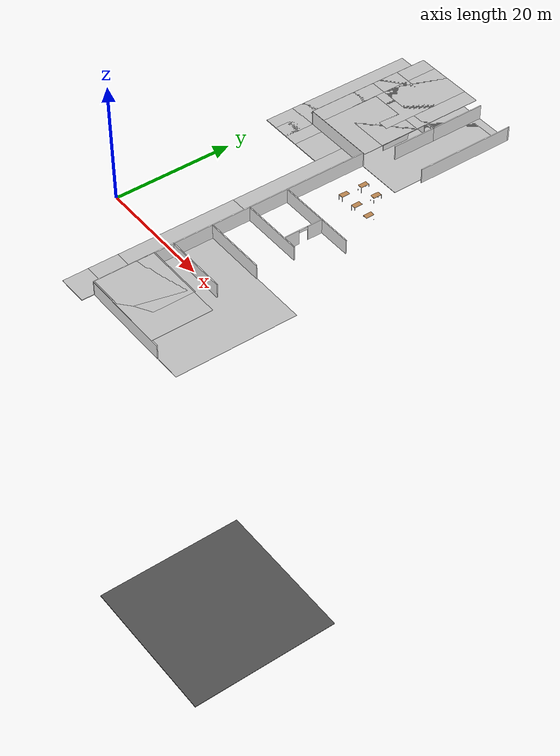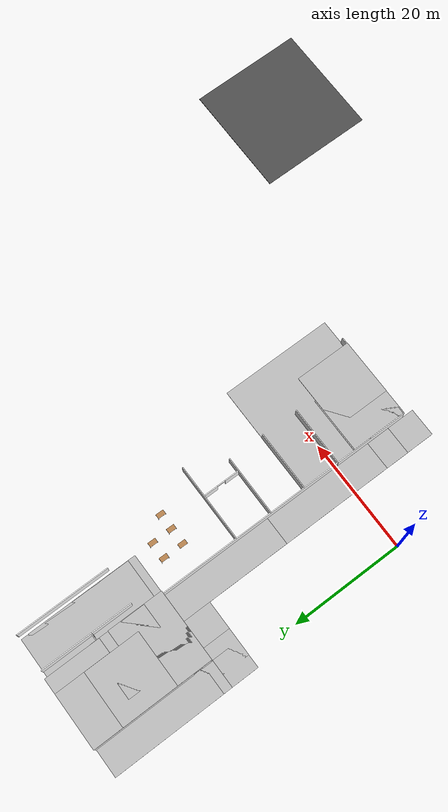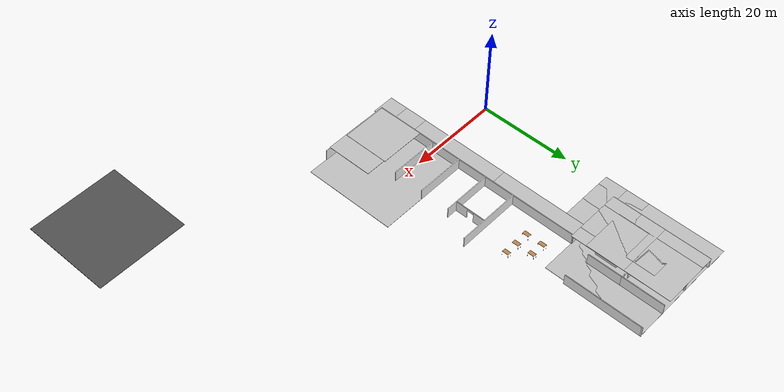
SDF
<sdf version="1.6">
 <world name="default">
  <model name="mainoffice">
   <pose>42.7555 15.4488 0 0 -0 0</pose>
   <link name="Wall_125">
    <collision name="Wall_125_Collision">
     <geometry><box><size>4.25 0.15 2.5</size></box></geometry>
     <pose>0 0 1.25 0 -0 0</pose>
    </collision>
    <visual name="Wall_125_Visual">
     <pose>0 0 1.25 0 -0 0</pose>
     <geometry><box><size>4.25 0.15 2.5</size></box></geometry>
     <material>
      <script>
       <uri>model://office_env/materials/scripts</uri>
       <uri>model://office_env/materials/textures</uri>
       <name>wall</name>
      </script>
      <ambient>1 1 1 1</ambient>
     </material>
    </visual>
    <pose>-30.1665 27.2379 0 0 -0 3.14159</pose>
   </link>
   <link name="Wall_126">
    <pose>-32.2165 33.1629 0 0 -0 1.5708</pose>
    <visual name="Wall_126_Visual_0">
     <pose>-5.66049 0 1.25 0 -0 0</pose>
     <geometry><box><size>0.679016 0.15 2.5</size></box></geometry>
     <material>
      <script>
       <uri>model://office_env/materials/scripts</uri>
       <uri>model://office_env/materials/textures</uri>
       <name>wall</name>
      </script>
      <ambient>1 1 1 1</ambient>
     </material>
    </visual>
    <collision name="Wall_126_Collision_0">
     <geometry><box><size>0.679016 0.15 2.5</size></box></geometry>
     <pose>-5.66049 0 1.25 0 -0 0</pose>
    </collision>
    <visual name="Wall_126_Visual_1">
     <pose>1.08951 0 1.25 0 -0 0</pose>
     <geometry><box><size>9.82098 0.15 2.5</size></box></geometry>
     <material>
      <script>
       <uri>model://office_env/materials/scripts</uri>
       <uri>model://office_env/materials/textures</uri>
       <name>wall</name>
      </script>
      <ambient>1 1 1 1</ambient>
     </material>
    </visual>
    <collision name="Wall_126_Collision_1">
     <geometry><box><size>9.82098 0.15 2.5</size></box></geometry>
     <pose>1.08951 0 1.25 0 -0 0</pose>
    </collision>
    <visual name="Wall_126_Visual_2">
     <pose>-4.57098 0 2.25 0 -0 0</pose>
     <geometry><box><size>1.5 0.15 0.5</size></box></geometry>
     <material>
      <script>
       <uri>model://office_env/materials/scripts</uri>
       <uri>model://office_env/materials/textures</uri>
       <name>wall</name>
      </script>
      <ambient>1 1 1 1</ambient>
     </material>
    </visual>
    <collision name="Wall_126_Collision_2">
     <geometry><box><size>1.5 0.15 0.5</size></box></geometry>
     <pose>-4.57098 0 2.25 0 -0 0</pose>
    </collision>
   </link>
   <link name="Wall_128">
    <collision name="Wall_128_Collision">
     <geometry><box><size>0.25 0.15 2.5</size></box></geometry>
     <pose>0 0 1.25 0 -0 0</pose>
    </collision>
    <visual name="Wall_128_Visual">
     <pose>0 0 1.25 0 -0 0</pose>
     <geometry><box><size>0.25 0.15 2.5</size></box></geometry>
     <material>
      <script>
       <uri>model://office_env/materials/scripts</uri>
       <uri>model://office_env/materials/textures</uri>
       <name>wall</name>
      </script>
      <ambient>1 1 1 1</ambient>
     </material>
    </visual>
    <pose>-32.2165 39.1379 0 0 -0 1.5708</pose>
   </link>
   <link name="Wall_130">
    <pose>-28.8573 30.0928 0 0 -0 0</pose>
    <visual name="Wall_130_Visual_0">
     <pose>-1.12067 0 1.25 0 -0 0</pose>
     <geometry><box><size>4.75866 0.15 2.5</size></box></geometry>
     <material>
      <script>
       <uri>model://office_env/materials/scripts</uri>
       <uri>model://office_env/materials/textures</uri>
       <name>wall</name>
      </script>
      <ambient>1 1 1 1</ambient>
     </material>
    </visual>
    <collision name="Wall_130_Collision_0">
     <geometry><box><size>4.75866 0.15 2.5</size></box></geometry>
     <pose>-1.12067 0 1.25 0 -0 0</pose>
    </collision>
    <visual name="Wall_130_Visual_1">
     <pose>3.12933 0 1.25 0 -0 0</pose>
     <geometry><box><size>0.741337 0.15 2.5</size></box></geometry>
     <material>
      <script>
       <uri>model://office_env/materials/scripts</uri>
       <uri>model://office_env/materials/textures</uri>
       <name>wall</name>
      </script>
      <ambient>1 1 1 1</ambient>
     </material>
    </visual>
    <collision name="Wall_130_Collision_1">
     <geometry><box><size>0.741337 0.15 2.5</size></box></geometry>
     <pose>3.12933 0 1.25 0 -0 0</pose>
    </collision>
    <visual name="Wall_130_Visual_2">
     <pose>2.00866 0 2.25 0 -0 0</pose>
     <geometry><box><size>1.5 0.15 0.5</size></box></geometry>
     <material>
      <script>
       <uri>model://office_env/materials/scripts</uri>
       <uri>model://office_env/materials/textures</uri>
       <name>wall</name>
      </script>
      <ambient>1 1 1 1</ambient>
     </material>
    </visual>
    <collision name="Wall_130_Collision_2">
     <geometry><box><size>1.5 0.15 0.5</size></box></geometry>
     <pose>2.00866 0 2.25 0 -0 0</pose>
    </collision>
   </link>
   <link name="Wall_131">
    <collision name="Wall_131_Collision">
     <geometry><box><size>7.5 0.15 2.5</size></box></geometry>
     <pose>0 0 1.25 0 -0 0</pose>
    </collision>
    <visual name="Wall_131_Visual">
     <pose>0 0 1.25 0 -0 0</pose>
     <geometry><box><size>7.5 0.15 2.5</size></box></geometry>
     <material>
      <script>
       <uri>model://office_env/materials/scripts</uri>
       <uri>model://office_env/materials/textures</uri>
       <name>wall</name>
      </script>
      <ambient>1 1 1 1</ambient>
     </material>
    </visual>
    <pose>-25.4323 26.4178 0 0 0 -1.5708</pose>
   </link>
   <link name="Wall_133">
    <collision name="Wall_133_Collision">
     <geometry><box><size>4.75 0.15 2.5</size></box></geometry>
     <pose>0 0 1.25 0 -0 0</pose>
    </collision>
    <visual name="Wall_133_Visual">
     <pose>0 0 1.25 0 -0 0</pose>
     <geometry><box><size>4.75 0.15 2.5</size></box></geometry>
     <material>
      <script>
       <uri>model://office_env/materials/scripts</uri>
       <uri>model://office_env/materials/textures</uri>
       <name>wall</name>
      </script>
      <ambient>1 1 1 1</ambient>
     </material>
    </visual>
    <pose>-28.1164 24.9379 0 0 0 -1.5708</pose>
   </link>
   <link name="Wall_135">
    <collision name="Wall_135_Collision">
     <geometry><box><size>9.25 0.15 2.5</size></box></geometry>
     <pose>0 0 1.25 0 -0 0</pose>
    </collision>
    <visual name="Wall_135_Visual">
     <pose>0 0 1.25 0 -0 0</pose>
     <geometry><box><size>9.25 0.15 2.5</size></box></geometry>
     <material>
      <script>
       <uri>model://office_env/materials/scripts</uri>
       <uri>model://office_env/materials/textures</uri>
       <name>wall</name>
      </script>
      <ambient>1 1 1 1</ambient>
     </material>
    </visual>
    <pose>-25.4323 34.6428 0 0 -0 1.5708</pose>
   </link>
   <link name="Wall_137">
    <collision name="Wall_137_Collision">
     <geometry><box><size>16.75 0.15 2.5</size></box></geometry>
     <pose>0 0 1.25 0 -0 0</pose>
    </collision>
    <visual name="Wall_137_Visual">
     <pose>0 0 1.25 0 -0 0</pose>
     <geometry><box><size>16.75 0.15 2.5</size></box></geometry>
     <material>
      <script>
       <uri>model://office_env/materials/scripts</uri>
       <uri>model://office_env/materials/textures</uri>
       <name>wall</name>
      </script>
      <ambient>1 1 1 1</ambient>
     </material>
    </visual>
    <pose>-18.9193 30.8236 0 0 -0 1.5708</pose>
   </link>
   <link name="Wall_138">
    <collision name="Wall_138_Collision">
     <geometry><box><size>0.25 0.15 2.5</size></box></geometry>
     <pose>0 0 1.25 0 -0 0</pose>
    </collision>
    <visual name="Wall_138_Visual">
     <pose>0 0 1.25 0 -0 0</pose>
     <geometry><box><size>0.25 0.15 2.5</size></box></geometry>
     <material>
      <script>
       <uri>model://office_env/materials/scripts</uri>
       <uri>model://office_env/materials/textures</uri>
       <name>wall</name>
      </script>
      <ambient>1 1 1 1</ambient>
     </material>
    </visual>
    <pose>-18.9193 39.1736 0 0 -0 1.5708</pose>
   </link>
   <link name="Wall_34">
    <collision name="Wall_34_Collision">
     <geometry><box><size>15.75 0.15 2.5</size></box></geometry>
     <pose>0 0 1.25 0 -0 0</pose>
    </collision>
    <visual name="Wall_34_Visual">
     <pose>0 0 1.25 0 -0 0</pose>
     <geometry><box><size>15.75 0.15 2.5</size></box></geometry>
     <material>
      <script>
       <uri>model://office_env/materials/scripts</uri>
       <uri>model://office_env/materials/textures</uri>
       <name>wall</name>
      </script>
      <ambient>1 1 1 1</ambient>
     </material>
    </visual>
    <pose>-19.2991 -29.125 0 0 -0 3.14159</pose>
   </link>
   <link name="Wall_35">
    <collision name="Wall_35_Collision">
     <geometry><box><size>47.25 0.15 2.5</size></box></geometry>
     <pose>0 0 1.25 0 -0 0</pose>
    </collision>
    <visual name="Wall_35_Visual">
     <pose>0 0 1.25 0 -0 0</pose>
     <geometry><box><size>47.25 0.15 2.5</size></box></geometry>
     <material>
      <script>
       <uri>model://office_env/materials/scripts</uri>
       <uri>model://office_env/materials/textures</uri>
       <name>wall</name>
      </script>
      <ambient>1 1 1 1</ambient>
     </material>
    </visual>
    <pose>-27.0991 -5.575 0 0 -0 1.5708</pose>
   </link>
   <link name="Wall_36">
    <collision name="Wall_36_Collision">
     <geometry><box><size>12.5 0.15 2.5</size></box></geometry>
     <pose>0 0 1.25 0 -0 0</pose>
    </collision>
    <visual name="Wall_36_Visual">
     <pose>0 0 1.25 0 -0 0</pose>
     <geometry><box><size>12.5 0.15 2.5</size></box></geometry>
     <material>
      <script>
       <uri>model://office_env/materials/scripts</uri>
       <uri>model://office_env/materials/textures</uri>
       <name>wall</name>
      </script>
      <ambient>1 1 1 1</ambient>
     </material>
    </visual>
    <pose>-33.2741 17.975 0 0 -0 3.14159</pose>
   </link>
   <link name="Wall_37">
    <pose>-39.4491 28.65 0 0 -0 1.5708</pose>
    <visual name="Wall_37_Visual_0">
     <pose>-9.83172 0 1.25 0 -0 0</pose>
     <geometry><box><size>1.83655 0.15 2.5</size></box></geometry>
     <material>
      <script>
       <uri>model://office_env/materials/scripts</uri>
       <uri>model://office_env/materials/textures</uri>
       <name>wall</name>
      </script>
      <ambient>1 1 1 1</ambient>
     </material>
    </visual>
    <collision name="Wall_37_Collision_0">
     <geometry><box><size>1.83655 0.15 2.5</size></box></geometry>
     <pose>-9.83172 0 1.25 0 -0 0</pose>
    </collision>
    <visual name="Wall_37_Visual_1">
     <pose>1.66828 0 1.25 0 -0 0</pose>
     <geometry><box><size>18.1634 0.15 2.5</size></box></geometry>
     <material>
      <script>
       <uri>model://office_env/materials/scripts</uri>
       <uri>model://office_env/materials/textures</uri>
       <name>wall</name>
      </script>
      <ambient>1 1 1 1</ambient>
     </material>
    </visual>
    <collision name="Wall_37_Collision_1">
     <geometry><box><size>18.1634 0.15 2.5</size></box></geometry>
     <pose>1.66828 0 1.25 0 -0 0</pose>
    </collision>
    <visual name="Wall_37_Visual_2">
     <pose>-8.16345 0 2.25 0 -0 0</pose>
     <geometry><box><size>1.5 0.15 0.5</size></box></geometry>
     <material>
      <script>
       <uri>model://office_env/materials/scripts</uri>
       <uri>model://office_env/materials/textures</uri>
       <name>wall</name>
      </script>
      <ambient>1 1 1 1</ambient>
     </material>
    </visual>
    <collision name="Wall_37_Collision_2">
     <geometry><box><size>1.5 0.15 0.5</size></box></geometry>
     <pose>-8.16345 0 2.25 0 -0 0</pose>
    </collision>
   </link>
   <link name="Wall_63">
    <collision name="Wall_63_Collision">
     <geometry><box><size>10.75 0.15 2.5</size></box></geometry>
     <pose>0 0 1.25 0 -0 0</pose>
    </collision>
    <visual name="Wall_63_Visual">
     <pose>0 0 1.25 0 -0 0</pose>
     <geometry><box><size>10.75 0.15 2.5</size></box></geometry>
     <material>
      <script>
       <uri>model://office_env/materials/scripts</uri>
       <uri>model://office_env/materials/textures</uri>
       <name>wall</name>
      </script>
      <ambient>1 1 1 1</ambient>
     </material>
    </visual>
    <pose>-21.7491 -2.675 0 0 -0 3.14159</pose>
   </link>
   <link name="Wall_65">
    <collision name="Wall_65_Collision">
     <geometry><box><size>10.75 0.15 2.5</size></box></geometry>
     <pose>0 0 1.25 0 -0 0</pose>
    </collision>
    <visual name="Wall_65_Visual">
     <pose>0 0 1.25 0 -0 0</pose>
     <geometry><box><size>10.75 0.15 2.5</size></box></geometry>
     <material>
      <script>
       <uri>model://office_env/materials/scripts</uri>
       <uri>model://office_env/materials/textures</uri>
       <name>wall</name>
      </script>
      <ambient>1 1 1 1</ambient>
     </material>
    </visual>
    <pose>-21.7491 -22.275 0 0 -0 3.14159</pose>
   </link>
   <link name="Wall_69">
    <collision name="Wall_69_Collision">
     <geometry><box><size>10.75 0.15 2.5</size></box></geometry>
     <pose>0 0 1.25 0 -0 0</pose>
    </collision>
    <visual name="Wall_69_Visual">
     <pose>0 0 1.25 0 -0 0</pose>
     <geometry><box><size>10.75 0.15 2.5</size></box></geometry>
     <material>
      <script>
       <uri>model://office_env/materials/scripts</uri>
       <uri>model://office_env/materials/textures</uri>
       <name>wall</name>
      </script>
      <ambient>1 1 1 1</ambient>
     </material>
    </visual>
    <pose>-21.8396 -15.8176 0 0 -0 3.14159</pose>
   </link>
   <link name="Wall_71">
    <collision name="Wall_71_Collision">
     <geometry><box><size>10.75 0.15 2.5</size></box></geometry>
     <pose>0 0 1.25 0 -0 0</pose>
    </collision>
    <visual name="Wall_71_Visual">
     <pose>0 0 1.25 0 -0 0</pose>
     <geometry><box><size>10.75 0.15 2.5</size></box></geometry>
     <material>
      <script>
       <uri>model://office_env/materials/scripts</uri>
       <uri>model://office_env/materials/textures</uri>
       <name>wall</name>
      </script>
      <ambient>1 1 1 1</ambient>
     </material>
    </visual>
    <pose>-21.7518 -9.17769 0 0 -0 3.14159</pose>
   </link>
   <link name="Wall_88">
    <collision name="Wall_88_Collision">
     <geometry><box><size>14 0.15 2.5</size></box></geometry>
     <pose>0 0 1.25 0 -0 0</pose>
    </collision>
    <visual name="Wall_88_Visual">
     <pose>0 0 1.25 0 -0 0</pose>
     <geometry><box><size>14 0.15 2.5</size></box></geometry>
     <material>
      <script>
       <uri>model://office_env/materials/scripts</uri>
       <uri>model://office_env/materials/textures</uri>
       <name>wall</name>
      </script>
      <ambient>1 1 1 1</ambient>
     </material>
    </visual>
    <pose>-20.1147 4.02546 0 0 -0 3.14159</pose>
   </link>
   <link name="Wall_90">
    <pose>-18.7887 0.663928 0 0 0 -1.5708</pose>
    <visual name="Wall_90_Visual_0">
     <pose>-2.08201 0 1.25 0 -0 0</pose>
     <geometry><box><size>2.58598 0.15 2.5</size></box></geometry>
     <material>
      <script>
       <uri>model://office_env/materials/scripts</uri>
       <uri>model://office_env/materials/textures</uri>
       <name>wall</name>
      </script>
      <ambient>1 1 1 1</ambient>
     </material>
    </visual>
    <collision name="Wall_90_Collision_0">
     <geometry><box><size>2.58598 0.15 2.5</size></box></geometry>
     <pose>-2.08201 0 1.25 0 -0 0</pose>
    </collision>
    <visual name="Wall_90_Visual_1">
     <pose>2.04299 0 1.25 0 -0 0</pose>
     <geometry><box><size>2.66402 0.15 2.5</size></box></geometry>
     <material>
      <script>
       <uri>model://office_env/materials/scripts</uri>
       <uri>model://office_env/materials/textures</uri>
       <name>wall</name>
      </script>
      <ambient>1 1 1 1</ambient>
     </material>
    </visual>
    <collision name="Wall_90_Collision_1">
     <geometry><box><size>2.66402 0.15 2.5</size></box></geometry>
     <pose>2.04299 0 1.25 0 -0 0</pose>
    </collision>
    <visual name="Wall_90_Visual_2">
     <pose>-0.039023 0 2.25 0 -0 0</pose>
     <geometry><box><size>1.5 0.15 0.5</size></box></geometry>
     <material>
      <script>
       <uri>model://office_env/materials/scripts</uri>
       <uri>model://office_env/materials/textures</uri>
       <name>wall</name>
      </script>
      <ambient>1 1 1 1</ambient>
     </material>
    </visual>
    <collision name="Wall_90_Collision_2">
     <geometry><box><size>1.5 0.15 0.5</size></box></geometry>
     <pose>-0.039023 0 2.25 0 -0 0</pose>
    </collision>
   </link>
   <static>1</static>
  </model>
  <model name="asphalt_plane">
   <static>1</static>
   <link name="link">
    <collision name="collision"><geometry><box><size>20 20 0.1</size></box></geometry></collision>
    <visual name="visual">
     <cast_shadows>0</cast_shadows>
     <geometry><box><size>20 20 0.1</size></box></geometry>
     <material>
      <script>
       <uri>model://asphalt_plane/materials/scripts</uri>
       <uri>model://asphalt_plane/materials/textures</uri>
       <name>vrc/asphalt</name>
      </script>
     </material>
    </visual>
   </link>
   <pose>70.7475 -31.5972 0 0 -0 0</pose>
  </model>
  <model name="table">
   <static>0</static>
   <link name="link">
    <collision name="surface">
     <pose>0 0 1 0 -0 0</pose>
     <geometry><box><size>1.5 0.8 0.03</size></box></geometry>
     <surface><friction><ode><mu>0.6</mu><mu2>0.6</mu2></ode></friction></surface>
    </collision>
    <visual name="visual1">
     <pose>0 0 1 0 -0 0</pose>
     <geometry><box><size>1.4 0.8 0.04</size></box></geometry>
     <material>
      <script><uri>file://media/materials/scripts/gazebo.material</uri><name>Gazebo/Wood</name></script>
     </material>
    </visual>
    <collision name="front_left_leg">
     <pose>0.68 0.38 0.5 0 -0 0</pose>
     <geometry><cylinder><radius>0.02</radius><length>1</length></cylinder></geometry>
    </collision>
    <visual name="front_left_leg">
     <pose>0.68 0.38 0.5 0 -0 0</pose>
     <geometry><cylinder><radius>0.02</radius><length>1</length></cylinder></geometry>
     <material>
      <script>
       <uri>model://office_env/materials/scripts</uri>
       <uri>model://office_env/materials/textures</uri>
       <name>wall</name>
      </script>
     </material>
    </visual>
    <collision name="front_right_leg">
     <pose>0.68 -0.38 0.5 0 -0 0</pose>
     <geometry><cylinder><radius>0.02</radius><length>1</length></cylinder></geometry>
    </collision>
    <visual name="front_right_leg">
     <pose>0.68 -0.38 0.5 0 -0 0</pose>
     <geometry><cylinder><radius>0.02</radius><length>1</length></cylinder></geometry>
     <material>
      <script>
       <uri>model://office_env/materials/scripts</uri>
       <uri>model://office_env/materials/textures</uri>
       <name>wall</name>
      </script>
     </material>
    </visual>
    <collision name="back_right_leg">
     <pose>-0.68 -0.38 0.5 0 -0 0</pose>
     <geometry><cylinder><radius>0.02</radius><length>1</length></cylinder></geometry>
    </collision>
    <visual name="back_right_leg">
     <pose>-0.68 -0.38 0.5 0 -0 0</pose>
     <geometry><cylinder><radius>0.02</radius><length>1</length></cylinder></geometry>
     <material>
      <script>
       <uri>model://office_env/materials/scripts</uri>
       <uri>model://office_env/materials/textures</uri>
       <name>wall</name>
      </script>
     </material>
    </visual>
    <collision name="back_left_leg">
     <pose>-0.68 0.38 0.5 0 -0 0</pose>
     <geometry><cylinder><radius>0.02</radius><length>1</length></cylinder></geometry>
    </collision>
    <visual name="back_left_leg">
     <pose>-0.68 0.38 0.5 0 -0 0</pose>
     <geometry><cylinder><radius>0.02</radius><length>1</length></cylinder></geometry>
     <material>
      <script>
       <uri>model://office_env/materials/scripts</uri>
       <uri>model://office_env/materials/textures</uri>
       <name>wall</name>
      </script>
     </material>
    </visual>
    <inertial>
     <inertia><ixx>1</ixx><ixy>0</ixy><ixz>0</ixz><iyy>1</iyy><iyz>0</iyz><izz>1</izz></inertia>
     <mass>1</mass>
    </inertial>
   </link>
   <pose>6.75899 49.9498 0.034999 0 -0 0</pose>
  </model>
  <model name="table_3">
   <static>0</static>
   <link name="link">
    <collision name="surface">
     <pose>0 0 1 0 -0 0</pose>
     <geometry><box><size>1.5 0.8 0.03</size></box></geometry>
     <surface><friction><ode><mu>0.6</mu><mu2>0.6</mu2></ode></friction></surface>
    </collision>
    <visual name="visual1">
     <pose>0 0 1 0 -0 0</pose>
     <geometry><box><size>1.4 0.8 0.04</size></box></geometry>
     <material>
      <script><uri>file://media/materials/scripts/gazebo.material</uri><name>Gazebo/Wood</name></script>
     </material>
    </visual>
    <collision name="front_left_leg">
     <pose>0.68 0.38 0.5 0 -0 0</pose>
     <geometry><cylinder><radius>0.02</radius><length>1</length></cylinder></geometry>
    </collision>
    <visual name="front_left_leg">
     <pose>0.68 0.38 0.5 0 -0 0</pose>
     <geometry><cylinder><radius>0.02</radius><length>1</length></cylinder></geometry>
     <material>
      <script>
       <uri>model://office_env/materials/scripts</uri>
       <uri>model://office_env/materials/textures</uri>
       <name>wall</name>
      </script>
     </material>
    </visual>
    <collision name="front_right_leg">
     <pose>0.68 -0.38 0.5 0 -0 0</pose>
     <geometry><cylinder><radius>0.02</radius><length>1</length></cylinder></geometry>
    </collision>
    <visual name="front_right_leg">
     <pose>0.68 -0.38 0.5 0 -0 0</pose>
     <geometry><cylinder><radius>0.02</radius><length>1</length></cylinder></geometry>
     <material>
      <script>
       <uri>model://office_env/materials/scripts</uri>
       <uri>model://office_env/materials/textures</uri>
       <name>wall</name>
      </script>
     </material>
    </visual>
    <collision name="back_right_leg">
     <pose>-0.68 -0.38 0.5 0 -0 0</pose>
     <geometry><cylinder><radius>0.02</radius><length>1</length></cylinder></geometry>
    </collision>
    <visual name="back_right_leg">
     <pose>-0.68 -0.38 0.5 0 -0 0</pose>
     <geometry><cylinder><radius>0.02</radius><length>1</length></cylinder></geometry>
     <material>
      <script>
       <uri>model://office_env/materials/scripts</uri>
       <uri>model://office_env/materials/textures</uri>
       <name>wall</name>
      </script>
     </material>
    </visual>
    <collision name="back_left_leg">
     <pose>-0.68 0.38 0.5 0 -0 0</pose>
     <geometry><cylinder><radius>0.02</radius><length>1</length></cylinder></geometry>
    </collision>
    <visual name="back_left_leg">
     <pose>-0.68 0.38 0.5 0 -0 0</pose>
     <geometry><cylinder><radius>0.02</radius><length>1</length></cylinder></geometry>
     <material>
      <script>
       <uri>model://office_env/materials/scripts</uri>
       <uri>model://office_env/materials/textures</uri>
       <name>wall</name>
      </script>
     </material>
    </visual>
    <inertial>
     <inertia><ixx>1</ixx><ixy>0</ixy><ixz>0</ixz><iyy>1</iyy><iyz>0</iyz><izz>1</izz></inertia>
     <mass>1</mass>
    </inertial>
   </link>
   <pose>20.1295 30.0365 0.034999 0 0 -1.58064</pose>
  </model>
  <model name="table_3_clone">
   <static>0</static>
   <link name="link">
    <collision name="surface">
     <pose>0 0 1 0 -0 0</pose>
     <geometry><box><size>1.5 0.8 0.03</size></box></geometry>
     <surface><friction><ode><mu>0.6</mu><mu2>0.6</mu2></ode></friction></surface>
    </collision>
    <visual name="visual1">
     <pose>0 0 1 0 -0 0</pose>
     <geometry><box><size>1.4 0.8 0.04</size></box></geometry>
     <material>
      <script><uri>file://media/materials/scripts/gazebo.material</uri><name>Gazebo/Wood</name></script>
     </material>
    </visual>
    <collision name="front_left_leg">
     <pose>0.68 0.38 0.5 0 -0 0</pose>
     <geometry><cylinder><radius>0.02</radius><length>1</length></cylinder></geometry>
    </collision>
    <visual name="front_left_leg">
     <pose>0.68 0.38 0.5 0 -0 0</pose>
     <geometry><cylinder><radius>0.02</radius><length>1</length></cylinder></geometry>
     <material>
      <script>
       <uri>model://office_env/materials/scripts</uri>
       <uri>model://office_env/materials/textures</uri>
       <name>wall</name>
      </script>
     </material>
    </visual>
    <collision name="front_right_leg">
     <pose>0.68 -0.38 0.5 0 -0 0</pose>
     <geometry><cylinder><radius>0.02</radius><length>1</length></cylinder></geometry>
    </collision>
    <visual name="front_right_leg">
     <pose>0.68 -0.38 0.5 0 -0 0</pose>
     <geometry><cylinder><radius>0.02</radius><length>1</length></cylinder></geometry>
     <material>
      <script>
       <uri>model://office_env/materials/scripts</uri>
       <uri>model://office_env/materials/textures</uri>
       <name>wall</name>
      </script>
     </material>
    </visual>
    <collision name="back_right_leg">
     <pose>-0.68 -0.38 0.5 0 -0 0</pose>
     <geometry><cylinder><radius>0.02</radius><length>1</length></cylinder></geometry>
    </collision>
    <visual name="back_right_leg">
     <pose>-0.68 -0.38 0.5 0 -0 0</pose>
     <geometry><cylinder><radius>0.02</radius><length>1</length></cylinder></geometry>
     <material>
      <script>
       <uri>model://office_env/materials/scripts</uri>
       <uri>model://office_env/materials/textures</uri>
       <name>wall</name>
      </script>
     </material>
    </visual>
    <collision name="back_left_leg">
     <pose>-0.68 0.38 0.5 0 -0 0</pose>
     <geometry><cylinder><radius>0.02</radius><length>1</length></cylinder></geometry>
    </collision>
    <visual name="back_left_leg">
     <pose>-0.68 0.38 0.5 0 -0 0</pose>
     <geometry><cylinder><radius>0.02</radius><length>1</length></cylinder></geometry>
     <material>
      <script>
       <uri>model://office_env/materials/scripts</uri>
       <uri>model://office_env/materials/textures</uri>
       <name>wall</name>
      </script>
     </material>
    </visual>
    <inertial>
     <inertia><ixx>1</ixx><ixy>0</ixy><ixz>0</ixz><iyy>1</iyy><iyz>0</iyz><izz>1</izz></inertia>
     <mass>1</mass>
    </inertial>
   </link>
   <pose>20.1673 26.4749 0.034999 0 0 -1.58064</pose>
  </model>
  <model name="table_3_clone_clone_clone_0">
   <static>0</static>
   <link name="link">
    <collision name="surface">
     <pose>0 0 1 0 -0 0</pose>
     <geometry><box><size>1.5 0.8 0.03</size></box></geometry>
     <surface><friction><ode><mu>0.6</mu><mu2>0.6</mu2></ode></friction></surface>
    </collision>
    <visual name="visual1">
     <pose>0 0 1 0 -0 0</pose>
     <geometry><box><size>1.4 0.8 0.04</size></box></geometry>
     <material>
      <script><uri>file://media/materials/scripts/gazebo.material</uri><name>Gazebo/Wood</name></script>
     </material>
    </visual>
    <collision name="front_left_leg">
     <pose>0.68 0.38 0.5 0 -0 0</pose>
     <geometry><cylinder><radius>0.02</radius><length>1</length></cylinder></geometry>
    </collision>
    <visual name="front_left_leg">
     <pose>0.68 0.38 0.5 0 -0 0</pose>
     <geometry><cylinder><radius>0.02</radius><length>1</length></cylinder></geometry>
     <material>
      <script>
       <uri>model://office_env/materials/scripts</uri>
       <uri>model://office_env/materials/textures</uri>
       <name>wall</name>
      </script>
     </material>
    </visual>
    <collision name="front_right_leg">
     <pose>0.68 -0.38 0.5 0 -0 0</pose>
     <geometry><cylinder><radius>0.02</radius><length>1</length></cylinder></geometry>
    </collision>
    <visual name="front_right_leg">
     <pose>0.68 -0.38 0.5 0 -0 0</pose>
     <geometry><cylinder><radius>0.02</radius><length>1</length></cylinder></geometry>
     <material>
      <script>
       <uri>model://office_env/materials/scripts</uri>
       <uri>model://office_env/materials/textures</uri>
       <name>wall</name>
      </script>
     </material>
    </visual>
    <collision name="back_right_leg">
     <pose>-0.68 -0.38 0.5 0 -0 0</pose>
     <geometry><cylinder><radius>0.02</radius><length>1</length></cylinder></geometry>
    </collision>
    <visual name="back_right_leg">
     <pose>-0.68 -0.38 0.5 0 -0 0</pose>
     <geometry><cylinder><radius>0.02</radius><length>1</length></cylinder></geometry>
     <material>
      <script>
       <uri>model://office_env/materials/scripts</uri>
       <uri>model://office_env/materials/textures</uri>
       <name>wall</name>
      </script>
     </material>
    </visual>
    <collision name="back_left_leg">
     <pose>-0.68 0.38 0.5 0 -0 0</pose>
     <geometry><cylinder><radius>0.02</radius><length>1</length></cylinder></geometry>
    </collision>
    <visual name="back_left_leg">
     <pose>-0.68 0.38 0.5 0 -0 0</pose>
     <geometry><cylinder><radius>0.02</radius><length>1</length></cylinder></geometry>
     <material>
      <script>
       <uri>model://office_env/materials/scripts</uri>
       <uri>model://office_env/materials/textures</uri>
       <name>wall</name>
      </script>
     </material>
    </visual>
    <inertial>
     <inertia><ixx>1</ixx><ixy>0</ixy><ixz>0</ixz><iyy>1</iyy><iyz>0</iyz><izz>1</izz></inertia>
     <mass>1</mass>
    </inertial>
   </link>
   <pose>23.1004 26.4884 0.034999 0 0 -1.58064</pose>
  </model>
  <model name="table_3_clone_clone_clone_1">
   <static>0</static>
   <link name="link">
    <collision name="surface">
     <pose>0 0 1 0 -0 0</pose>
     <geometry><box><size>1.5 0.8 0.03</size></box></geometry>
     <surface><friction><ode><mu>0.6</mu><mu2>0.6</mu2></ode></friction></surface>
    </collision>
    <visual name="visual1">
     <pose>0 0 1 0 -0 0</pose>
     <geometry><box><size>1.4 0.8 0.04</size></box></geometry>
     <material>
      <script><uri>file://media/materials/scripts/gazebo.material</uri><name>Gazebo/Wood</name></script>
     </material>
    </visual>
    <collision name="front_left_leg">
     <pose>0.68 0.38 0.5 0 -0 0</pose>
     <geometry><cylinder><radius>0.02</radius><length>1</length></cylinder></geometry>
    </collision>
    <visual name="front_left_leg">
     <pose>0.68 0.38 0.5 0 -0 0</pose>
     <geometry><cylinder><radius>0.02</radius><length>1</length></cylinder></geometry>
     <material>
      <script>
       <uri>model://office_env/materials/scripts</uri>
       <uri>model://office_env/materials/textures</uri>
       <name>wall</name>
      </script>
     </material>
    </visual>
    <collision name="front_right_leg">
     <pose>0.68 -0.38 0.5 0 -0 0</pose>
     <geometry><cylinder><radius>0.02</radius><length>1</length></cylinder></geometry>
    </collision>
    <visual name="front_right_leg">
     <pose>0.68 -0.38 0.5 0 -0 0</pose>
     <geometry><cylinder><radius>0.02</radius><length>1</length></cylinder></geometry>
     <material>
      <script>
       <uri>model://office_env/materials/scripts</uri>
       <uri>model://office_env/materials/textures</uri>
       <name>wall</name>
      </script>
     </material>
    </visual>
    <collision name="back_right_leg">
     <pose>-0.68 -0.38 0.5 0 -0 0</pose>
     <geometry><cylinder><radius>0.02</radius><length>1</length></cylinder></geometry>
    </collision>
    <visual name="back_right_leg">
     <pose>-0.68 -0.38 0.5 0 -0 0</pose>
     <geometry><cylinder><radius>0.02</radius><length>1</length></cylinder></geometry>
     <material>
      <script>
       <uri>model://office_env/materials/scripts</uri>
       <uri>model://office_env/materials/textures</uri>
       <name>wall</name>
      </script>
     </material>
    </visual>
    <collision name="back_left_leg">
     <pose>-0.68 0.38 0.5 0 -0 0</pose>
     <geometry><cylinder><radius>0.02</radius><length>1</length></cylinder></geometry>
    </collision>
    <visual name="back_left_leg">
     <pose>-0.68 0.38 0.5 0 -0 0</pose>
     <geometry><cylinder><radius>0.02</radius><length>1</length></cylinder></geometry>
     <material>
      <script>
       <uri>model://office_env/materials/scripts</uri>
       <uri>model://office_env/materials/textures</uri>
       <name>wall</name>
      </script>
     </material>
    </visual>
    <inertial>
     <inertia><ixx>1</ixx><ixy>0</ixy><ixz>0</ixz><iyy>1</iyy><iyz>0</iyz><izz>1</izz></inertia>
     <mass>1</mass>
    </inertial>
   </link>
   <pose>23.0792 30.0448 0.034999 0 0 -1.58064</pose>
  </model>
  <model name="table_3_clone_clone_clone_3">
   <static>0</static>
   <link name="link">
    <collision name="surface">
     <pose>0 0 1 0 -0 0</pose>
     <geometry><box><size>1.5 0.8 0.03</size></box></geometry>
     <surface><friction><ode><mu>0.6</mu><mu2>0.6</mu2></ode></friction></surface>
    </collision>
    <visual name="visual1">
     <pose>0 0 1 0 -0 0</pose>
     <geometry><box><size>1.4 0.8 0.04</size></box></geometry>
     <material>
      <script><uri>file://media/materials/scripts/gazebo.material</uri><name>Gazebo/Wood</name></script>
     </material>
    </visual>
    <collision name="front_left_leg">
     <pose>0.68 0.38 0.5 0 -0 0</pose>
     <geometry><cylinder><radius>0.02</radius><length>1</length></cylinder></geometry>
    </collision>
    <visual name="front_left_leg">
     <pose>0.68 0.38 0.5 0 -0 0</pose>
     <geometry><cylinder><radius>0.02</radius><length>1</length></cylinder></geometry>
     <material>
      <script>
       <uri>model://office_env/materials/scripts</uri>
       <uri>model://office_env/materials/textures</uri>
       <name>wall</name>
      </script>
     </material>
    </visual>
    <collision name="front_right_leg">
     <pose>0.68 -0.38 0.5 0 -0 0</pose>
     <geometry><cylinder><radius>0.02</radius><length>1</length></cylinder></geometry>
    </collision>
    <visual name="front_right_leg">
     <pose>0.68 -0.38 0.5 0 -0 0</pose>
     <geometry><cylinder><radius>0.02</radius><length>1</length></cylinder></geometry>
     <material>
      <script>
       <uri>model://office_env/materials/scripts</uri>
       <uri>model://office_env/materials/textures</uri>
       <name>wall</name>
      </script>
     </material>
    </visual>
    <collision name="back_right_leg">
     <pose>-0.68 -0.38 0.5 0 -0 0</pose>
     <geometry><cylinder><radius>0.02</radius><length>1</length></cylinder></geometry>
    </collision>
    <visual name="back_right_leg">
     <pose>-0.68 -0.38 0.5 0 -0 0</pose>
     <geometry><cylinder><radius>0.02</radius><length>1</length></cylinder></geometry>
     <material>
      <script>
       <uri>model://office_env/materials/scripts</uri>
       <uri>model://office_env/materials/textures</uri>
       <name>wall</name>
      </script>
     </material>
    </visual>
    <collision name="back_left_leg">
     <pose>-0.68 0.38 0.5 0 -0 0</pose>
     <geometry><cylinder><radius>0.02</radius><length>1</length></cylinder></geometry>
    </collision>
    <visual name="back_left_leg">
     <pose>-0.68 0.38 0.5 0 -0 0</pose>
     <geometry><cylinder><radius>0.02</radius><length>1</length></cylinder></geometry>
     <material>
      <script>
       <uri>model://office_env/materials/scripts</uri>
       <uri>model://office_env/materials/textures</uri>
       <name>wall</name>
      </script>
     </material>
    </visual>
    <inertial>
     <inertia><ixx>1</ixx><ixy>0</ixy><ixz>0</ixz><iyy>1</iyy><iyz>0</iyz><izz>1</izz></inertia>
     <mass>1</mass>
    </inertial>
   </link>
   <pose>25.9264 26.4512 0.034999 0 0 -1.58064</pose>
  </model>
  <model name="Floor_38">
   <link name="main">
    <pose>0 0 0.01 0 -0 0</pose>
    <collision name="main_Collision"><geometry><box><size>20 20 0.05</size></box></geometry></collision>
    <visual name="main_Visual">
     <geometry><box><size>20 20 0.05</size></box></geometry>
     <material>
      <script>
       <uri>model://Floor_medium/materials/scripts</uri>
       <uri>model://Floor_medium/materials/textures</uri>
       <name>floor</name>
      </script>
     </material>
    </visual>
   </link>
   <static>1</static>
   <pose>25.6683 -3.68274 0 0 -0 0</pose>
  </model>
  <model name="Floor_50">
   <link name="main">
    <pose>0 0 0.01 0 -0 0</pose>
    <collision name="main_Collision"><geometry><box><size>20 20 0.05</size></box></geometry></collision>
    <visual name="main_Visual">
     <geometry><box><size>20 20 0.05</size></box></geometry>
     <material>
      <script>
       <uri>model://Floor_medium/materials/scripts</uri>
       <uri>model://Floor_medium/materials/textures</uri>
       <name>floor</name>
      </script>
     </material>
    </visual>
   </link>
   <static>1</static>
   <pose>13.27 44.6882 0 0 -0 0</pose>
  </model>
  <model name="Floor_51">
   <link name="main">
    <pose>0 0 0.01 0 -0 0</pose>
    <collision name="main_Collision"><geometry><box><size>20 20 0.05</size></box></geometry></collision>
    <visual name="main_Visual">
     <geometry><box><size>20 20 0.05</size></box></geometry>
     <material>
      <script>
       <uri>model://Floor_medium/materials/scripts</uri>
       <uri>model://Floor_medium/materials/textures</uri>
       <name>floor</name>
      </script>
     </material>
    </visual>
   </link>
   <static>1</static>
   <pose>13.3202 43.3668 0 0 -0 0</pose>
  </model>
  <model name="outdoor_plane_18">
   <static>1</static>
   <link name="link">
    <collision name="collision"><geometry><box><size>5 20 0.1</size></box></geometry></collision>
    <visual name="visual">
     <cast_shadows>0</cast_shadows>
     <geometry><box><size>5 20 0.1</size></box></geometry>
     <material>
      <script>
       <uri>model://outdoor_plane/materials/scripts</uri>
       <uri>model://outdoor_plane/materials/textures</uri>
       <name>outds/Image</name>
      </script>
     </material>
    </visual>
   </link>
   <pose>13.0879 23.3949 0 0 -0 0</pose>
  </model>
  <model name="outdoor_plane_19">
   <static>1</static>
   <link name="link">
    <collision name="collision"><geometry><box><size>5 20 0.1</size></box></geometry></collision>
    <visual name="visual">
     <cast_shadows>0</cast_shadows>
     <geometry><box><size>5 20 0.1</size></box></geometry>
     <material>
      <script>
       <uri>model://outdoor_plane/materials/scripts</uri>
       <uri>model://outdoor_plane/materials/textures</uri>
       <name>outds/Image</name>
      </script>
     </material>
    </visual>
   </link>
   <pose>13.0738 3.43151 0 0 -0 0</pose>
  </model>
  <model name="outdoor_plane_31">
   <static>1</static>
   <link name="link">
    <collision name="collision"><geometry><box><size>5 5 0.1</size></box></geometry></collision>
    <visual name="visual">
     <cast_shadows>0</cast_shadows>
     <geometry><box><size>5 5 0.1</size></box></geometry>
     <material>
      <script>
       <uri>model://outdoor_planesmall/materials/scripts</uri>
       <uri>model://outdoor_planesmall/materials/textures</uri>
       <name>outdss/Image</name>
      </script>
     </material>
    </visual>
   </link>
   <pose>13.0578 -9.06664 0 0 -0 0</pose>
  </model>
  <model name="outdoor_plane_32">
   <static>1</static>
   <link name="link">
    <collision name="collision"><geometry><box><size>5 5 0.1</size></box></geometry></collision>
    <visual name="visual">
     <cast_shadows>0</cast_shadows>
     <geometry><box><size>5 5 0.1</size></box></geometry>
     <material>
      <script>
       <uri>model://outdoor_planesmall/materials/scripts</uri>
       <uri>model://outdoor_planesmall/materials/textures</uri>
       <name>outdss/Image</name>
      </script>
     </material>
    </visual>
   </link>
   <pose>13.0735 -13.2628 0 0 -0 0</pose>
  </model>
  <model name="outdoor_plane_33">
   <static>1</static>
   <link name="link">
    <collision name="collision"><geometry><box><size>5 5 0.1</size></box></geometry></collision>
    <visual name="visual">
     <cast_shadows>0</cast_shadows>
     <geometry><box><size>5 5 0.1</size></box></geometry>
     <material>
      <script>
       <uri>model://outdoor_planesmall/materials/scripts</uri>
       <uri>model://outdoor_planesmall/materials/textures</uri>
       <name>outdss/Image</name>
      </script>
     </material>
    </visual>
   </link>
   <pose>8.10474 30.8535 0 0 -0 0</pose>
  </model>
  <model name="outdoor_plane_34">
   <static>1</static>
   <link name="link">
    <collision name="collision"><geometry><box><size>5 5 0.1</size></box></geometry></collision>
    <visual name="visual">
     <cast_shadows>0</cast_shadows>
     <geometry><box><size>5 5 0.1</size></box></geometry>
     <material>
      <script>
       <uri>model://outdoor_planesmall/materials/scripts</uri>
       <uri>model://outdoor_planesmall/materials/textures</uri>
       <name>outdss/Image</name>
      </script>
     </material>
    </visual>
   </link>
   <pose>3.18164 30.8566 0 0 -0 0</pose>
  </model>
  <model name="outdoor_plane_35">
   <static>1</static>
   <link name="link">
    <collision name="collision"><geometry><box><size>5 5 0.1</size></box></geometry></collision>
    <visual name="visual">
     <cast_shadows>0</cast_shadows>
     <geometry><box><size>5 5 0.1</size></box></geometry>
     <material>
      <script>
       <uri>model://outdoor_planesmall/materials/scripts</uri>
       <uri>model://outdoor_planesmall/materials/textures</uri>
       <name>outdss/Image</name>
      </script>
     </material>
    </visual>
   </link>
   <pose>0.821095 35.7571 0 0 -0 0</pose>
  </model>
  <model name="outdoor_plane_36">
   <static>1</static>
   <link name="link">
    <collision name="collision"><geometry><box><size>5 5 0.1</size></box></geometry></collision>
    <visual name="visual">
     <cast_shadows>0</cast_shadows>
     <geometry><box><size>5 5 0.1</size></box></geometry>
     <material>
      <script>
       <uri>model://outdoor_planesmall/materials/scripts</uri>
       <uri>model://outdoor_planesmall/materials/textures</uri>
       <name>outdss/Image</name>
      </script>
     </material>
    </visual>
   </link>
   <pose>0.830037 30.8668 0 0 -0 0</pose>
  </model>
  <model name="outdoor_plane_37">
   <static>1</static>
   <link name="link">
    <collision name="collision"><geometry><box><size>5 20 0.1</size></box></geometry></collision>
    <visual name="visual">
     <cast_shadows>0</cast_shadows>
     <geometry><box><size>5 20 0.1</size></box></geometry>
     <material>
      <script>
       <uri>model://outdoor_plane/materials/scripts</uri>
       <uri>model://outdoor_plane/materials/textures</uri>
       <name>outds/Image</name>
      </script>
     </material>
    </visual>
   </link>
   <pose>0.816783 44.8307 0 0 -0 0</pose>
  </model>
  <model name="Floor_3_clone_10_clone_6">
   <link name="main">
    <pose>0 0 0.01 0 -0 0</pose>
    <collision name="main_Collision"><geometry><box><size>10 10 0.05</size></box></geometry></collision>
    <visual name="main_Visual">
     <geometry><box><size>10 10 0.05</size></box></geometry>
     <material>
      <script>
       <uri>model://Floor_small/materials/scripts</uri>
       <uri>model://Floor_small/materials/textures</uri>
       <name>floor</name>
      </script>
     </material>
    </visual>
   </link>
   <static>1</static>
   <pose>20.7159 -8.58363 2.5 0 -0 0</pose>
  </model>
  <model name="Floor_3_clone_10_clone_7">
   <link name="main">
    <pose>0 0 0.01 0 -0 0</pose>
    <collision name="main_Collision"><geometry><box><size>10 10 0.05</size></box></geometry></collision>
    <visual name="main_Visual">
     <geometry><box><size>10 10 0.05</size></box></geometry>
     <material>
      <script>
       <uri>model://Floor_small/materials/scripts</uri>
       <uri>model://Floor_small/materials/textures</uri>
       <name>floor</name>
      </script>
     </material>
    </visual>
   </link>
   <static>1</static>
   <pose>20.7262 -8.765 2.5 0 -0 0</pose>
  </model>
  <model name="Floor_3_clone_17">
   <link name="main">
    <pose>0 0 0.01 0 -0 0</pose>
    <collision name="main_Collision"><geometry><box><size>10 10 0.05</size></box></geometry></collision>
    <visual name="main_Visual">
     <geometry><box><size>10 10 0.05</size></box></geometry>
     <material>
      <script>
       <uri>model://Floor_small/materials/scripts</uri>
       <uri>model://Floor_small/materials/textures</uri>
       <name>floor</name>
      </script>
     </material>
    </visual>
   </link>
   <static>1</static>
   <pose>25.182 -8.79488 2.5 0 -0 0</pose>
  </model>
  <model name="Floor_3_clone_25">
   <link name="main">
    <pose>0 0 0.01 0 -0 0</pose>
    <collision name="main_Collision"><geometry><box><size>10 10 0.05</size></box></geometry></collision>
    <visual name="main_Visual">
     <geometry><box><size>10 10 0.05</size></box></geometry>
     <material>
      <script>
       <uri>model://Floor_small/materials/scripts</uri>
       <uri>model://Floor_small/materials/textures</uri>
       <name>floor</name>
      </script>
     </material>
    </visual>
   </link>
   <static>1</static>
   <pose>11.0137 49.9805 2.5 0 -0 0</pose>
  </model>
  <model name="Floor_3_clone_26">
   <link name="main">
    <pose>0 0 0.01 0 -0 0</pose>
    <collision name="main_Collision"><geometry><box><size>10 10 0.05</size></box></geometry></collision>
    <visual name="main_Visual">
     <geometry><box><size>10 10 0.05</size></box></geometry>
     <material>
      <script>
       <uri>model://Floor_small/materials/scripts</uri>
       <uri>model://Floor_small/materials/textures</uri>
       <name>floor</name>
      </script>
     </material>
    </visual>
   </link>
   <static>1</static>
   <pose>11.036 41.6665 2.5 0 -0 0</pose>
  </model>
  <model name="Floor_3_clone_27">
   <link name="main">
    <pose>0 0 0.01 0 -0 0</pose>
    <collision name="main_Collision"><geometry><box><size>10 10 0.05</size></box></geometry></collision>
    <visual name="main_Visual">
     <geometry><box><size>10 10 0.05</size></box></geometry>
     <material>
      <script>
       <uri>model://Floor_small/materials/scripts</uri>
       <uri>model://Floor_small/materials/textures</uri>
       <name>floor</name>
      </script>
     </material>
    </visual>
   </link>
   <static>1</static>
   <pose>11.108 38.352 2.5 0 -0 0</pose>
  </model>
  <model name="Floor_3_clone_28">
   <link name="main">
    <pose>0 0 0.01 0 -0 0</pose>
    <collision name="main_Collision"><geometry><box><size>10 10 0.05</size></box></geometry></collision>
    <visual name="main_Visual">
     <geometry><box><size>10 10 0.05</size></box></geometry>
     <material>
      <script>
       <uri>model://Floor_small/materials/scripts</uri>
       <uri>model://Floor_small/materials/textures</uri>
       <name>floor</name>
      </script>
     </material>
    </visual>
   </link>
   <static>1</static>
   <pose>8.29914 38.3499 2.5 0 -0 0</pose>
  </model>
  <model name="Floor_3_clone_29">
   <link name="main">
    <pose>0 0 0.01 0 -0 0</pose>
    <collision name="main_Collision"><geometry><box><size>10 10 0.05</size></box></geometry></collision>
    <visual name="main_Visual">
     <geometry><box><size>10 10 0.05</size></box></geometry>
     <material>
      <script>
       <uri>model://Floor_small/materials/scripts</uri>
       <uri>model://Floor_small/materials/textures</uri>
       <name>floor</name>
      </script>
     </material>
    </visual>
   </link>
   <static>1</static>
   <pose>8.28978 49.9829 2.5 0 -0 0</pose>
  </model>
  <model name="Floor_3_clone_30">
   <link name="main">
    <pose>0 0 0.01 0 -0 0</pose>
    <collision name="main_Collision"><geometry><box><size>10 10 0.05</size></box></geometry></collision>
    <visual name="main_Visual">
     <geometry><box><size>10 10 0.05</size></box></geometry>
     <material>
      <script>
       <uri>model://Floor_small/materials/scripts</uri>
       <uri>model://Floor_small/materials/textures</uri>
       <name>floor</name>
      </script>
     </material>
    </visual>
   </link>
   <static>1</static>
   <pose>8.28357 44.6973 2.5 0 -0 0</pose>
  </model>
 </world>
</sdf>
